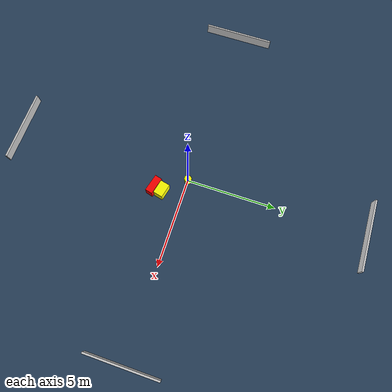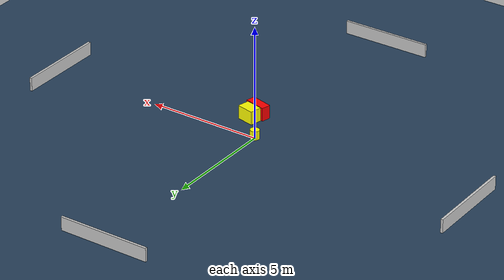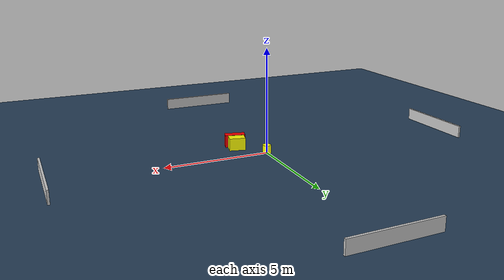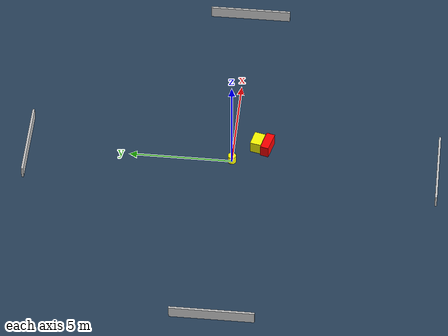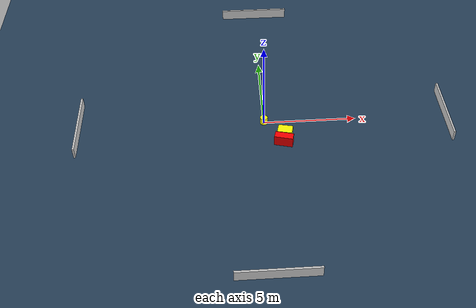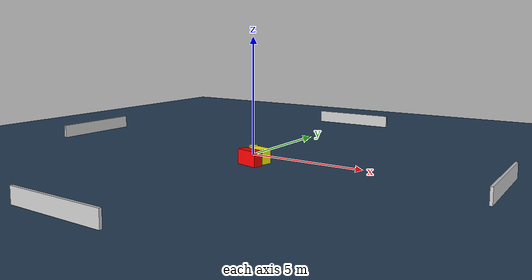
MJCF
<?xml version="1.0" ?>
<mujoco model="generated_environment">
  <option timestep="0.01" integrator="RK4" cone="elliptic"/>
  <default>
    <geom density="1"/>
  </default>
  <asset>
    <texture builtin="gradient" height="3072" name="skybox" rgb1="0.3 0.5 0.7" rgb2="0 0 0" type="skybox" width="512"/>
    <texture builtin="checker" height="300" name="groundplane" rgb1="0.2 0.3 0.4" rgb2="0.1 0.2 0.3" type="2d" width="300"/>
    <material name="groundplane" reflectance="0.2" texrepeat="5 5" texture="groundplane"/>
  </asset>
  <worldbody>
    <light dir="0 0 -1" directional="true" pos="0 0 1.5"/>
    <geom condim="3" friction="0.5 0.005 0.001" material="groundplane" name="floor" pos="0 0 0" size="0 0 0.05" type="plane"/>
    <body name="walls">
      <geom name="wall_1" condim="4" pos="-10.0 0.0 0.3" rgba="0.800000011920929 0.800000011920929 0.800000011920929 1.0" size="0.05 2.0 0.3" type="box"/>
      <geom name="wall_2" condim="4" pos="10.0 0.0 0.3" rgba="0.800000011920929 0.800000011920929 0.800000011920929 1.0" size="0.05 2.0 0.3" type="box"/>
      <geom name="wall_3" condim="4" pos="0.0 -10.0 0.3" rgba="0.800000011920929 0.800000011920929 0.800000011920929 1.0" size="2.0 0.05 0.3" type="box"/>
      <geom name="wall_4" condim="4" pos="0.0 10.0 0.3" rgba="0.800000011920929 0.800000011920929 0.800000011920929 1.0" size="2.0 0.05 0.3" type="box"/>
    </body>
    <body name="robot">
      <joint name="joint_x" type="slide" pos="0 0 0" axis="1 0 0"/>
      <joint name="joint_y" type="slide" pos="0 0 0" axis="0 1 0"/>
      <geom name="robot" type="cylinder" pos="0.0 0.0 0.2" size="0.2 0.2 0.0" mass="5.0" friction="1.0 0.005 0.0001" condim="4" rgba="1.0 1.0 0.0 1.0"/>
    </body>
    <body name="obstacle_1_movable">
      <geom name="obstacle_1_movable" condim="4" pos="1.0594976100587585 -1.1606835512969078 0.3" euler="0 0 77.07213969632403" friction="0.0 0.005 0.001" rgba="1.0 1.0 0.0 1.0" size="0.2662686250419943 0.3873972737494489 0.3" type="box" mass="0.1"/>
      <joint type="free"/>
    </body>
    <body name="obstacle_2_static">
      <geom name="obstacle_2_static" condim="4" pos="0.9628805927965248 -1.6477750714327255 0.3" euler="0 0 255.5103050235734" friction="0.0 0.005 0.001" rgba="1.0 0.0 0.0 1.0" size="0.20376353157372884 0.48777160658048746 0.3" type="box"/>
    </body>
  </worldbody>
  <actuator>
    <motor name="actuator_x" joint="joint_x" gear="1" ctrlrange="-1 1"/>
    <motor name="actuator_y" joint="joint_y" gear="1" ctrlrange="-1 1"/>
  </actuator>
</mujoco>
